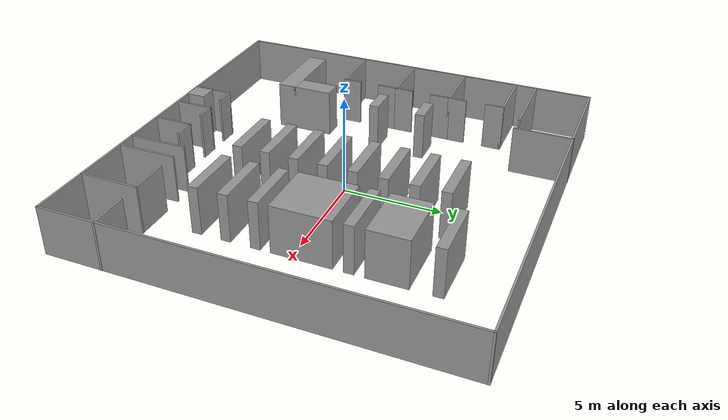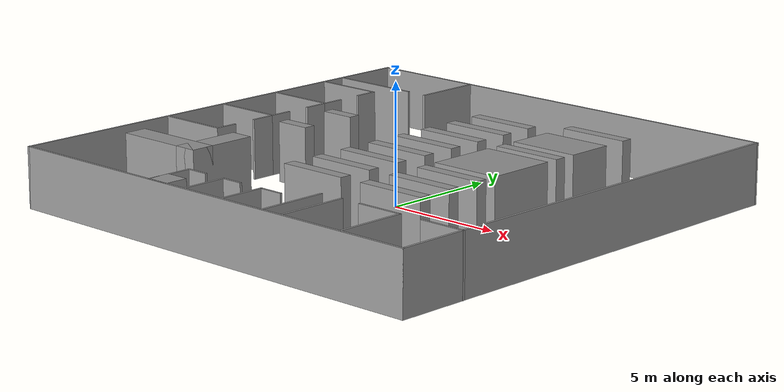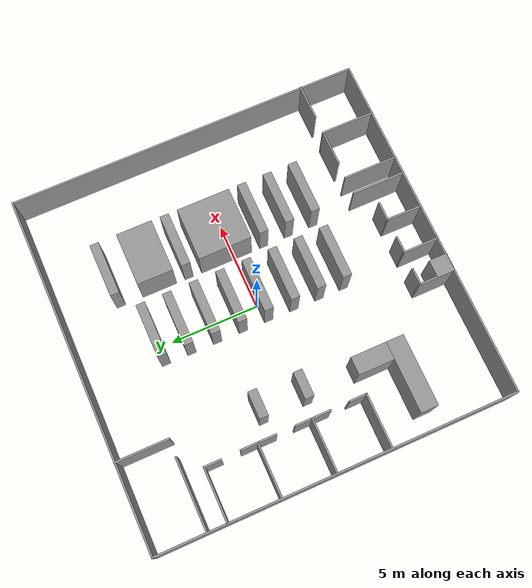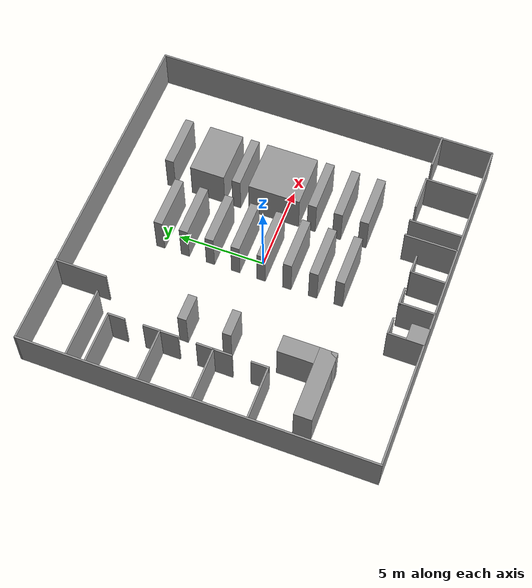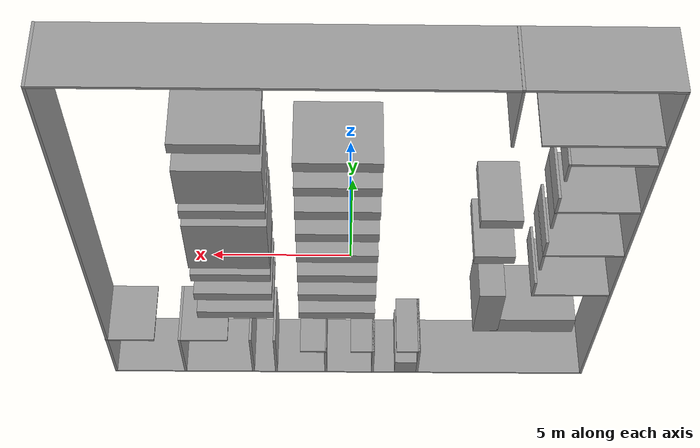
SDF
<?xml version='1.0'?>
<sdf version='1.6'>
  <model name='bibeg'>
    <pose frame=''>-0.041 -0.032 0 0 -0 0</pose>
    <link name='Wall_1'>
      <collision name='Wall_1_Collision'>
        <geometry>
          <box>
            <size>20 0.1 2.5</size>
          </box>
        </geometry>
        <pose frame=''>0 0 1.25 0 -0 0</pose>
      </collision>
      <visual name='Wall_1_Visual'>
        <pose frame=''>0 0 1.25 0 -0 0</pose>
        <geometry>
          <box>
            <size>20 0.1 2.5</size>
          </box>
        </geometry>
        <material>
          <script>
            <uri>file://media/materials/scripts/gazebo.material</uri>
            <name>Gazebo/Grey</name>
          </script>
          <ambient>1 1 1 1</ambient>
        </material>
        <meta>
          <layer>0</layer>
        </meta>
      </visual>
      <pose frame=''>-0.009 -9.957 0 0 -0 0</pose>
    </link>
    <link name='Wall_11'>
      <collision name='Wall_11_Collision'>
        <geometry>
          <box>
            <size>2 0.1 2.5</size>
          </box>
        </geometry>
        <pose frame=''>0 0 1.25 0 -0 0</pose>
      </collision>
      <visual name='Wall_11_Visual'>
        <pose frame=''>0 0 1.25 0 -0 0</pose>
        <geometry>
          <box>
            <size>2 0.1 2.5</size>
          </box>
        </geometry>
        <material>
          <script>
            <uri>file://media/materials/scripts/gazebo.material</uri>
            <name>Gazebo/Grey</name>
          </script>
          <ambient>1 1 1 1</ambient>
        </material>
        <meta>
          <layer>0</layer>
        </meta>
      </visual>
      <pose frame=''>-1.003 -8.963 0 0 -0 1.5708</pose>
    </link>
    <link name='Wall_12'>
      <collision name='Wall_12_Collision'>
        <geometry>
          <box>
            <size>1 0.1 2.5</size>
          </box>
        </geometry>
        <pose frame=''>0 0 1.25 0 -0 0</pose>
      </collision>
      <visual name='Wall_12_Visual'>
        <pose frame=''>0 0 1.25 0 -0 0</pose>
        <geometry>
          <box>
            <size>1 0.1 2.5</size>
          </box>
        </geometry>
        <material>
          <script>
            <uri>file://media/materials/scripts/gazebo.material</uri>
            <name>Gazebo/Grey</name>
          </script>
          <ambient>1 1 1 1</ambient>
        </material>
        <meta>
          <layer>0</layer>
        </meta>
      </visual>
      <pose frame=''>-0.553 -8.013 0 0 -0 0</pose>
    </link>
    <link name='Wall_14'>
      <collision name='Wall_14_Collision'>
        <geometry>
          <box>
            <size>1.95 0.1 2.5</size>
          </box>
        </geometry>
        <pose frame=''>0 0 1.25 0 -0 0</pose>
      </collision>
      <visual name='Wall_14_Visual'>
        <pose frame=''>0 0 1.25 0 -0 0</pose>
        <geometry>
          <box>
            <size>1.95 0.1 2.5</size>
          </box>
        </geometry>
        <material>
          <script>
            <uri>file://media/materials/scripts/gazebo.material</uri>
            <name>Gazebo/Grey</name>
          </script>
          <ambient>1 1 1 1</ambient>
        </material>
        <meta>
          <layer>0</layer>
        </meta>
      </visual>
      <pose frame=''>0.998 -8.928 0 0 -0 1.55999</pose>
    </link>
    <link name='Wall_15'>
      <collision name='Wall_15_Collision'>
        <geometry>
          <box>
            <size>1.1 0.1 2.5</size>
          </box>
        </geometry>
        <pose frame=''>0 0 1.25 0 -0 0</pose>
      </collision>
      <visual name='Wall_15_Visual'>
        <pose frame=''>0 0 1.25 0 -0 0</pose>
        <geometry>
          <box>
            <size>1.1 0.1 2.5</size>
          </box>
        </geometry>
        <material>
          <script>
            <uri>file://media/materials/scripts/gazebo.material</uri>
            <name>Gazebo/Grey</name>
          </script>
          <ambient>1 1 1 1</ambient>
        </material>
        <meta>
          <layer>0</layer>
        </meta>
      </visual>
      <pose frame=''>1.508 -8.003 0 0 -0 0</pose>
    </link>
    <link name='Wall_17'>
      <collision name='Wall_17_Collision'>
        <geometry>
          <box>
            <size>3 0.1 2.5</size>
          </box>
        </geometry>
        <pose frame=''>0 0 1.25 0 -0 0</pose>
      </collision>
      <visual name='Wall_17_Visual'>
        <pose frame=''>0 0 1.25 0 -0 0</pose>
        <geometry>
          <box>
            <size>3 0.1 2.5</size>
          </box>
        </geometry>
        <material>
          <script>
            <uri>file://media/materials/scripts/gazebo.material</uri>
            <name>Gazebo/Grey</name>
          </script>
          <ambient>1 1 1 1</ambient>
        </material>
        <meta>
          <layer>0</layer>
        </meta>
      </visual>
      <pose frame=''>3.1 -8.48345 0 0 -0 1.5708</pose>
    </link>
    <link name='Wall_2'>
      <collision name='Wall_2_Collision'>
        <geometry>
          <box>
            <size>20 0.1 2.5</size>
          </box>
        </geometry>
        <pose frame=''>0 0 1.25 0 -0 0</pose>
      </collision>
      <visual name='Wall_2_Visual'>
        <pose frame=''>0 0 1.25 0 -0 0</pose>
        <geometry>
          <box>
            <size>20 0.1 2.5</size>
          </box>
        </geometry>
        <material>
          <script>
            <uri>file://media/materials/scripts/gazebo.material</uri>
            <name>Gazebo/Grey</name>
          </script>
          <ambient>1 1 1 1</ambient>
        </material>
        <meta>
          <layer>0</layer>
        </meta>
      </visual>
      <pose frame=''>9.941 -0.007 0 0 -0 1.5708</pose>
    </link>
    <link name='Wall_20'>
      <collision name='Wall_20_Collision'>
        <geometry>
          <box>
            <size>3 0.1 2.5</size>
          </box>
        </geometry>
        <pose frame=''>0 0 1.25 0 -0 0</pose>
      </collision>
      <visual name='Wall_20_Visual'>
        <pose frame=''>0 0 1.25 0 -0 0</pose>
        <geometry>
          <box>
            <size>3 0.1 2.5</size>
          </box>
        </geometry>
        <material>
          <script>
            <uri>file://media/materials/scripts/gazebo.material</uri>
            <name>Gazebo/Grey</name>
          </script>
          <ambient>1 1 1 1</ambient>
        </material>
        <meta>
          <layer>0</layer>
        </meta>
      </visual>
      <pose frame=''>4.085 -8.443 0 0 -0 1.5708</pose>
    </link>
    <link name='Wall_23'>
      <collision name='Wall_23_Collision'>
        <geometry>
          <box>
            <size>3 0.1 2.5</size>
          </box>
        </geometry>
        <pose frame=''>0 0 1.25 0 -0 0</pose>
      </collision>
      <visual name='Wall_23_Visual'>
        <pose frame=''>0 0 1.25 0 -0 0</pose>
        <geometry>
          <box>
            <size>3 0.1 2.5</size>
          </box>
        </geometry>
        <material>
          <script>
            <uri>file://media/materials/scripts/gazebo.material</uri>
            <name>Gazebo/Grey</name>
          </script>
          <ambient>1 1 1 1</ambient>
        </material>
        <meta>
          <layer>0</layer>
        </meta>
      </visual>
      <pose frame=''>6.98189 -8.46334 0 0 -0 1.5708</pose>
    </link>
    <link name='Wall_24'>
      <collision name='Wall_24_Collision'>
        <geometry>
          <box>
            <size>2 0.1 2.5</size>
          </box>
        </geometry>
        <pose frame=''>0 0 1.25 0 -0 0</pose>
      </collision>
      <visual name='Wall_24_Visual'>
        <pose frame=''>0 0 1.25 0 -0 0</pose>
        <geometry>
          <box>
            <size>2 0.1 2.5</size>
          </box>
        </geometry>
        <material>
          <script>
            <uri>file://media/materials/scripts/gazebo.material</uri>
            <name>Gazebo/Grey</name>
          </script>
          <ambient>1 1 1 1</ambient>
        </material>
        <meta>
          <layer>0</layer>
        </meta>
      </visual>
      <pose frame=''>6.01177 -7.01334 0 0 -0 3.14159</pose>
    </link>
    <link name='Wall_26'>
      <collision name='Wall_26_Collision'>
        <geometry>
          <box>
            <size>2 0.1 2.5</size>
          </box>
        </geometry>
        <pose frame=''>0 0 1.25 0 -0 0</pose>
      </collision>
      <visual name='Wall_26_Visual'>
        <pose frame=''>0 0 1.25 0 -0 0</pose>
        <geometry>
          <box>
            <size>2 0.1 2.5</size>
          </box>
        </geometry>
        <material>
          <script>
            <uri>file://media/materials/scripts/gazebo.material</uri>
            <name>Gazebo/Grey</name>
          </script>
          <ambient>1 1 1 1</ambient>
        </material>
        <meta>
          <layer>0</layer>
        </meta>
      </visual>
      <pose frame=''>9.009 -7.017 0 0 -0 3.14159</pose>
    </link>
    <link name='Wall_28'>
      <collision name='Wall_28_Collision'>
        <geometry>
          <box>
            <size>3 0.1 2.5</size>
          </box>
        </geometry>
        <pose frame=''>0 0 1.25 0 -0 0</pose>
      </collision>
      <visual name='Wall_28_Visual'>
        <pose frame=''>0 0 1.25 0 -0 0</pose>
        <geometry>
          <box>
            <size>3 0.1 2.5</size>
          </box>
        </geometry>
        <material>
          <script>
            <uri>file://media/materials/scripts/gazebo.material</uri>
            <name>Gazebo/Grey</name>
          </script>
          <ambient>1 1 1 1</ambient>
        </material>
        <meta>
          <layer>0</layer>
        </meta>
      </visual>
      <pose frame=''>-5.017 8.507 0 0 -0 -1.5708</pose>
    </link>
    <link name='Wall_3'>
      <collision name='Wall_3_Collision'>
        <geometry>
          <box>
            <size>20 0.1 2.5</size>
          </box>
        </geometry>
        <pose frame=''>0 0 1.25 0 -0 0</pose>
      </collision>
      <visual name='Wall_3_Visual'>
        <pose frame=''>0 0 1.25 0 -0 0</pose>
        <geometry>
          <box>
            <size>20 0.1 2.5</size>
          </box>
        </geometry>
        <material>
          <script>
            <uri>file://media/materials/scripts/gazebo.material</uri>
            <name>Gazebo/Grey</name>
          </script>
          <ambient>1 1 1 1</ambient>
        </material>
        <meta>
          <layer>0</layer>
        </meta>
      </visual>
      <pose frame=''>-0.009 9.943 0 0 -0 3.14159</pose>
    </link>
    <link name='Wall_30'>
      <collision name='Wall_30_Collision'>
        <geometry>
          <box>
            <size>4 0.1 2.5</size>
          </box>
        </geometry>
        <pose frame=''>0 0 1.25 0 -0 0</pose>
      </collision>
      <visual name='Wall_30_Visual'>
        <pose frame=''>0 0 1.25 0 -0 0</pose>
        <geometry>
          <box>
            <size>4 0.1 2.5</size>
          </box>
        </geometry>
        <material>
          <script>
            <uri>file://media/materials/scripts/gazebo.material</uri>
            <name>Gazebo/Grey</name>
          </script>
          <ambient>1 1 1 1</ambient>
        </material>
        <meta>
          <layer>0</layer>
        </meta>
      </visual>
      <pose frame=''>-7.94645 7.08678 0 0 -0 0</pose>
    </link>
    <link name='Wall_33'>
      <collision name='Wall_33_Collision'>
        <geometry>
          <box>
            <size>3 0.1 2.5</size>
          </box>
        </geometry>
        <pose frame=''>0 0 1.25 0 -0 0</pose>
      </collision>
      <visual name='Wall_33_Visual'>
        <pose frame=''>0 0 1.25 0 -0 0</pose>
        <geometry>
          <box>
            <size>3 0.1 2.5</size>
          </box>
        </geometry>
        <material>
          <script>
            <uri>file://media/materials/scripts/gazebo.material</uri>
            <name>Gazebo/Grey</name>
          </script>
          <ambient>1 1 1 1</ambient>
        </material>
        <meta>
          <layer>0</layer>
        </meta>
      </visual>
      <pose frame=''>-8.46 6.002 0 0 -0 0</pose>
    </link>
    <link name='Wall_34'>
      <collision name='Wall_34_Collision'>
        <geometry>
          <box>
            <size>1 0.1 2.5</size>
          </box>
        </geometry>
        <pose frame=''>0 0 1.25 0 -0 0</pose>
      </collision>
      <visual name='Wall_34_Visual'>
        <pose frame=''>0 0 1.25 0 -0 0</pose>
        <geometry>
          <box>
            <size>1 0.1 2.5</size>
          </box>
        </geometry>
        <material>
          <script>
            <uri>file://media/materials/scripts/gazebo.material</uri>
            <name>Gazebo/Grey</name>
          </script>
          <ambient>1 1 1 1</ambient>
        </material>
        <meta>
          <layer>0</layer>
        </meta>
      </visual>
      <pose frame=''>-7.01 5.552 0 0 -0 -1.5708</pose>
    </link>
    <link name='Wall_36'>
      <collision name='Wall_36_Collision'>
        <geometry>
          <box>
            <size>3 0.1 2.5</size>
          </box>
        </geometry>
        <pose frame=''>0 0 1.25 0 -0 0</pose>
      </collision>
      <visual name='Wall_36_Visual'>
        <pose frame=''>0 0 1.25 0 -0 0</pose>
        <geometry>
          <box>
            <size>3 0.1 2.5</size>
          </box>
        </geometry>
        <material>
          <script>
            <uri>file://media/materials/scripts/gazebo.material</uri>
            <name>Gazebo/Grey</name>
          </script>
          <ambient>1 1 1 1</ambient>
        </material>
        <meta>
          <layer>0</layer>
        </meta>
      </visual>
      <pose frame=''>-8.433 3.093 0 0 -0 0</pose>
    </link>
    <link name='Wall_37'>
      <collision name='Wall_37_Collision'>
        <geometry>
          <box>
            <size>1 0.1 2.5</size>
          </box>
        </geometry>
        <pose frame=''>0 0 1.25 0 -0 0</pose>
      </collision>
      <visual name='Wall_37_Visual'>
        <pose frame=''>0 0 1.25 0 -0 0</pose>
        <geometry>
          <box>
            <size>1 0.1 2.5</size>
          </box>
        </geometry>
        <material>
          <script>
            <uri>file://media/materials/scripts/gazebo.material</uri>
            <name>Gazebo/Grey</name>
          </script>
          <ambient>1 1 1 1</ambient>
        </material>
        <meta>
          <layer>0</layer>
        </meta>
      </visual>
      <pose frame=''>-6.983 3.543 0 0 -0 1.5708</pose>
    </link>
    <link name='Wall_4'>
      <collision name='Wall_4_Collision'>
        <geometry>
          <box>
            <size>20 0.1 2.5</size>
          </box>
        </geometry>
        <pose frame=''>0 0 1.25 0 -0 0</pose>
      </collision>
      <visual name='Wall_4_Visual'>
        <pose frame=''>0 0 1.25 0 -0 0</pose>
        <geometry>
          <box>
            <size>20 0.1 2.5</size>
          </box>
        </geometry>
        <material>
          <script>
            <uri>file://media/materials/scripts/gazebo.material</uri>
            <name>Gazebo/Grey</name>
          </script>
          <ambient>1 1 1 1</ambient>
        </material>
        <meta>
          <layer>0</layer>
        </meta>
      </visual>
      <pose frame=''>-9.959 -0.007 0 0 -0 -1.5708</pose>
    </link>
    <link name='Wall_40'>
      <collision name='Wall_40_Collision'>
        <geometry>
          <box>
            <size>1.1 0.1 2.5</size>
          </box>
        </geometry>
        <pose frame=''>0 0 1.25 0 -0 0</pose>
      </collision>
      <visual name='Wall_40_Visual'>
        <pose frame=''>0 0 1.25 0 -0 0</pose>
        <geometry>
          <box>
            <size>1.1 0.1 2.5</size>
          </box>
        </geometry>
        <material>
          <script>
            <uri>file://media/materials/scripts/gazebo.material</uri>
            <name>Gazebo/Grey</name>
          </script>
          <ambient>1 1 1 1</ambient>
        </material>
        <meta>
          <layer>0</layer>
        </meta>
      </visual>
      <pose frame=''>-6.983 2.593 0 0 -0 -1.5708</pose>
    </link>
    <link name='Wall_42'>
      <collision name='Wall_42_Collision'>
        <geometry>
          <box>
            <size>3 0.1 2.5</size>
          </box>
        </geometry>
        <pose frame=''>0 0 1.25 0 -0 0</pose>
      </collision>
      <visual name='Wall_42_Visual'>
        <pose frame=''>0 0 1.25 0 -0 0</pose>
        <geometry>
          <box>
            <size>3 0.1 2.5</size>
          </box>
        </geometry>
        <material>
          <script>
            <uri>file://media/materials/scripts/gazebo.material</uri>
            <name>Gazebo/Grey</name>
          </script>
          <ambient>1 1 1 1</ambient>
        </material>
        <meta>
          <layer>0</layer>
        </meta>
      </visual>
      <pose frame=''>-8.433 0.104 0 0 -0 0</pose>
    </link>
    <link name='Wall_43'>
      <collision name='Wall_43_Collision'>
        <geometry>
          <box>
            <size>1 0.1 2.5</size>
          </box>
        </geometry>
        <pose frame=''>0 0 1.25 0 -0 0</pose>
      </collision>
      <visual name='Wall_43_Visual'>
        <pose frame=''>0 0 1.25 0 -0 0</pose>
        <geometry>
          <box>
            <size>1 0.1 2.5</size>
          </box>
        </geometry>
        <material>
          <script>
            <uri>file://media/materials/scripts/gazebo.material</uri>
            <name>Gazebo/Grey</name>
          </script>
          <ambient>1 1 1 1</ambient>
        </material>
        <meta>
          <layer>0</layer>
        </meta>
      </visual>
      <pose frame=''>-6.983 0.554 0 0 -0 1.5708</pose>
    </link>
    <link name='Wall_45'>
      <collision name='Wall_45_Collision'>
        <geometry>
          <box>
            <size>1.1 0.1 2.5</size>
          </box>
        </geometry>
        <pose frame=''>0 0 1.25 0 -0 0</pose>
      </collision>
      <visual name='Wall_45_Visual'>
        <pose frame=''>0 0 1.25 0 -0 0</pose>
        <geometry>
          <box>
            <size>1.1 0.1 2.5</size>
          </box>
        </geometry>
        <material>
          <script>
            <uri>file://media/materials/scripts/gazebo.material</uri>
            <name>Gazebo/Grey</name>
          </script>
          <ambient>1 1 1 1</ambient>
        </material>
        <meta>
          <layer>0</layer>
        </meta>
      </visual>
      <pose frame=''>-6.983 -0.396 0 0 -0 -1.5708</pose>
    </link>
    <link name='Wall_47'>
      <collision name='Wall_47_Collision'>
        <geometry>
          <box>
            <size>3 0.1 2.5</size>
          </box>
        </geometry>
        <pose frame=''>0 0 1.25 0 -0 0</pose>
      </collision>
      <visual name='Wall_47_Visual'>
        <pose frame=''>0 0 1.25 0 -0 0</pose>
        <geometry>
          <box>
            <size>3 0.1 2.5</size>
          </box>
        </geometry>
        <material>
          <script>
            <uri>file://media/materials/scripts/gazebo.material</uri>
            <name>Gazebo/Grey</name>
          </script>
          <ambient>1 1 1 1</ambient>
        </material>
        <meta>
          <layer>0</layer>
        </meta>
      </visual>
      <pose frame=''>-8.42 -2.911 0 0 -0 0</pose>
    </link>
    <link name='Wall_48'>
      <collision name='Wall_48_Collision'>
        <geometry>
          <box>
            <size>1 0.1 2.5</size>
          </box>
        </geometry>
        <pose frame=''>0 0 1.25 0 -0 0</pose>
      </collision>
      <visual name='Wall_48_Visual'>
        <pose frame=''>0 0 1.25 0 -0 0</pose>
        <geometry>
          <box>
            <size>1 0.1 2.5</size>
          </box>
        </geometry>
        <material>
          <script>
            <uri>file://media/materials/scripts/gazebo.material</uri>
            <name>Gazebo/Grey</name>
          </script>
          <ambient>1 1 1 1</ambient>
        </material>
        <meta>
          <layer>0</layer>
        </meta>
      </visual>
      <pose frame=''>-6.97 -2.461 0 0 -0 1.5708</pose>
    </link>
    <link name='Wall_50'>
      <collision name='Wall_50_Collision'>
        <geometry>
          <box>
            <size>4 1 2.5</size>
          </box>
        </geometry>
        <pose frame=''>0 0 1.25 0 -0 0</pose>
      </collision>
      <visual name='Wall_50_Visual'>
        <pose frame=''>0 0 1.25 0 -0 0</pose>
        <geometry>
          <box>
            <size>4 1 2.5</size>
          </box>
        </geometry>
        <material>
          <script>
            <uri>file://media/materials/scripts/gazebo.material</uri>
            <name>Gazebo/Grey</name>
          </script>
          <ambient>1 1 1 1</ambient>
        </material>
        <meta>
          <layer>0</layer>
        </meta>
      </visual>
      <pose frame=''>-6.94939 -5.487 0 0 -0 0</pose>
    </link>
    <link name='Wall_51'>
      <collision name='Wall_51_Collision'>
        <geometry>
          <box>
            <size>3 1 2.5</size>
          </box>
        </geometry>
        <pose frame=''>0 0 1.25 0 -0 0</pose>
      </collision>
      <visual name='Wall_51_Visual'>
        <pose frame=''>0 0 1.25 0 -0 0</pose>
        <geometry>
          <box>
            <size>3 1 2.5</size>
          </box>
        </geometry>
        <material>
          <script>
            <uri>file://media/materials/scripts/gazebo.material</uri>
            <name>Gazebo/Grey</name>
          </script>
          <ambient>1 1 1 1</ambient>
        </material>
        <meta>
          <layer>0</layer>
        </meta>
      </visual>
      <pose frame=''>-5.44939 -4.487 0 0 -0 1.5708</pose>
    </link>
    <link name='Wall_53'>
      <collision name='Wall_53_Collision'>
        <geometry>
          <box>
            <size>1.5 0.5 2.5</size>
          </box>
        </geometry>
        <pose frame=''>0 0 1.25 0 -0 0</pose>
      </collision>
      <visual name='Wall_53_Visual'>
        <pose frame=''>0 0 1.25 0 -0 0</pose>
        <geometry>
          <box>
            <size>1.5 0.5 2.5</size>
          </box>
        </geometry>
        <material>
          <script>
            <uri>file://media/materials/scripts/gazebo.material</uri>
            <name>Gazebo/Grey</name>
          </script>
          <ambient>1 1 1 1</ambient>
        </material>
        <meta>
          <layer>0</layer>
        </meta>
      </visual>
      <pose frame=''>-5.22251 -0.227 0 0 -0 0</pose>
    </link>
    <link name='Wall_55'>
      <collision name='Wall_55_Collision'>
        <geometry>
          <box>
            <size>1.5 0.5 2.5</size>
          </box>
        </geometry>
        <pose frame=''>0 0 1.25 0 -0 0</pose>
      </collision>
      <visual name='Wall_55_Visual'>
        <pose frame=''>0 0 1.25 0 -0 0</pose>
        <geometry>
          <box>
            <size>1.5 0.5 2.5</size>
          </box>
        </geometry>
        <material>
          <script>
            <uri>file://media/materials/scripts/gazebo.material</uri>
            <name>Gazebo/Grey</name>
          </script>
          <ambient>1 1 1 1</ambient>
        </material>
        <meta>
          <layer>0</layer>
        </meta>
      </visual>
      <pose frame=''>-5.20702 2.28602 0 0 -0 0</pose>
    </link>
    <link name='Wall_57'>
      <collision name='Wall_57_Collision'>
        <geometry>
          <box>
            <size>3 0.5 2.5</size>
          </box>
        </geometry>
        <pose frame=''>0 0 1.25 0 -0 0</pose>
      </collision>
      <visual name='Wall_57_Visual'>
        <pose frame=''>0 0 1.25 0 -0 0</pose>
        <geometry>
          <box>
            <size>3 0.5 2.5</size>
          </box>
        </geometry>
        <material>
          <script>
            <uri>file://media/materials/scripts/gazebo.material</uri>
            <name>Gazebo/Grey</name>
          </script>
          <ambient>1 1 1 1</ambient>
        </material>
        <meta>
          <layer>0</layer>
        </meta>
      </visual>
      <pose frame=''>0.538131 5.76561 0 0 -0 0</pose>
    </link>
    <link name='Wall_59'>
      <collision name='Wall_59_Collision'>
        <geometry>
          <box>
            <size>3 0.5 2.5</size>
          </box>
        </geometry>
        <pose frame=''>0 0 1.25 0 -0 0</pose>
      </collision>
      <visual name='Wall_59_Visual'>
        <pose frame=''>0 0 1.25 0 -0 0</pose>
        <geometry>
          <box>
            <size>3 0.5 2.5</size>
          </box>
        </geometry>
        <material>
          <script>
            <uri>file://media/materials/scripts/gazebo.material</uri>
            <name>Gazebo/Grey</name>
          </script>
          <ambient>1 1 1 1</ambient>
        </material>
        <meta>
          <layer>0</layer>
        </meta>
      </visual>
      <pose frame=''>0.537392 4.28587 0 0 -0 0</pose>
    </link>
    <link name='Wall_61'>
      <collision name='Wall_61_Collision'>
        <geometry>
          <box>
            <size>3 0.5 2.5</size>
          </box>
        </geometry>
        <pose frame=''>0 0 1.25 0 -0 0</pose>
      </collision>
      <visual name='Wall_61_Visual'>
        <pose frame=''>0 0 1.25 0 -0 0</pose>
        <geometry>
          <box>
            <size>3 0.5 2.5</size>
          </box>
        </geometry>
        <material>
          <script>
            <uri>file://media/materials/scripts/gazebo.material</uri>
            <name>Gazebo/Grey</name>
          </script>
          <ambient>1 1 1 1</ambient>
        </material>
        <meta>
          <layer>0</layer>
        </meta>
      </visual>
      <pose frame=''>0.537915 2.78187 0 0 -0 0</pose>
    </link>
    <link name='Wall_63'>
      <collision name='Wall_63_Collision'>
        <geometry>
          <box>
            <size>3 0.5 2.5</size>
          </box>
        </geometry>
        <pose frame=''>0 0 1.25 0 -0 0</pose>
      </collision>
      <visual name='Wall_63_Visual'>
        <pose frame=''>0 0 1.25 0 -0 0</pose>
        <geometry>
          <box>
            <size>3 0.5 2.5</size>
          </box>
        </geometry>
        <material>
          <script>
            <uri>file://media/materials/scripts/gazebo.material</uri>
            <name>Gazebo/Grey</name>
          </script>
          <ambient>1 1 1 1</ambient>
        </material>
        <meta>
          <layer>0</layer>
        </meta>
      </visual>
      <pose frame=''>0.538131 1.27887 0 0 -0 0</pose>
    </link>
    <link name='Wall_65'>
      <collision name='Wall_65_Collision'>
        <geometry>
          <box>
            <size>3 0.5 2.5</size>
          </box>
        </geometry>
        <pose frame=''>0 0 1.25 0 -0 0</pose>
      </collision>
      <visual name='Wall_65_Visual'>
        <pose frame=''>0 0 1.25 0 -0 0</pose>
        <geometry>
          <box>
            <size>3 0.5 2.5</size>
          </box>
        </geometry>
        <material>
          <script>
            <uri>file://media/materials/scripts/gazebo.material</uri>
            <name>Gazebo/Grey</name>
          </script>
          <ambient>1 1 1 1</ambient>
        </material>
        <meta>
          <layer>0</layer>
        </meta>
      </visual>
      <pose frame=''>0.537392 -0.225261 0 0 -0 0</pose>
    </link>
    <link name='Wall_67'>
      <collision name='Wall_67_Collision'>
        <geometry>
          <box>
            <size>3 0.5 2.5</size>
          </box>
        </geometry>
        <pose frame=''>0 0 1.25 0 -0 0</pose>
      </collision>
      <visual name='Wall_67_Visual'>
        <pose frame=''>0 0 1.25 0 -0 0</pose>
        <geometry>
          <box>
            <size>3 0.5 2.5</size>
          </box>
        </geometry>
        <material>
          <script>
            <uri>file://media/materials/scripts/gazebo.material</uri>
            <name>Gazebo/Grey</name>
          </script>
          <ambient>1 1 1 1</ambient>
        </material>
        <meta>
          <layer>0</layer>
        </meta>
      </visual>
      <pose frame=''>0.537392 -1.72813 0 0 -0 0</pose>
    </link>
    <link name='Wall_69'>
      <collision name='Wall_69_Collision'>
        <geometry>
          <box>
            <size>3 0.5 2.5</size>
          </box>
        </geometry>
        <pose frame=''>0 0 1.25 0 -0 0</pose>
      </collision>
      <visual name='Wall_69_Visual'>
        <pose frame=''>0 0 1.25 0 -0 0</pose>
        <geometry>
          <box>
            <size>3 0.5 2.5</size>
          </box>
        </geometry>
        <material>
          <script>
            <uri>file://media/materials/scripts/gazebo.material</uri>
            <name>Gazebo/Grey</name>
          </script>
          <ambient>1 1 1 1</ambient>
        </material>
        <meta>
          <layer>0</layer>
        </meta>
      </visual>
      <pose frame=''>0.536217 -3.23139 0 0 -0 3.14159</pose>
    </link>
    <link name='Wall_7'>
      <collision name='Wall_7_Collision'>
        <geometry>
          <box>
            <size>2 0.1 2.5</size>
          </box>
        </geometry>
        <pose frame=''>0 0 1.25 0 -0 0</pose>
      </collision>
      <visual name='Wall_7_Visual'>
        <pose frame=''>0 0 1.25 0 -0 0</pose>
        <geometry>
          <box>
            <size>2 0.1 2.5</size>
          </box>
        </geometry>
        <material>
          <script>
            <uri>file://media/materials/scripts/gazebo.material</uri>
            <name>Gazebo/Grey</name>
          </script>
          <ambient>1 1 1 1</ambient>
        </material>
        <meta>
          <layer>0</layer>
        </meta>
      </visual>
      <pose frame=''>-2.914 -8.943 0 0 -0 1.5708</pose>
    </link>
    <link name='Wall_71'>
      <collision name='Wall_71_Collision'>
        <geometry>
          <box>
            <size>3 0.5 2.5</size>
          </box>
        </geometry>
        <pose frame=''>0 0 1.25 0 -0 0</pose>
      </collision>
      <visual name='Wall_71_Visual'>
        <pose frame=''>0 0 1.25 0 -0 0</pose>
        <geometry>
          <box>
            <size>3 0.5 2.5</size>
          </box>
        </geometry>
        <material>
          <script>
            <uri>file://media/materials/scripts/gazebo.material</uri>
            <name>Gazebo/Grey</name>
          </script>
          <ambient>1 1 1 1</ambient>
        </material>
        <meta>
          <layer>0</layer>
        </meta>
      </visual>
      <pose frame=''>0.537262 -4.712 0 0 -0 0</pose>
    </link>
    <link name='Wall_73'>
      <collision name='Wall_73_Collision'>
        <geometry>
          <box>
            <size>3 0.5 2.5</size>
          </box>
        </geometry>
        <pose frame=''>0 0 1.25 0 -0 0</pose>
      </collision>
      <visual name='Wall_73_Visual'>
        <pose frame=''>0 0 1.25 0 -0 0</pose>
        <geometry>
          <box>
            <size>3 0.5 2.5</size>
          </box>
        </geometry>
        <material>
          <script>
            <uri>file://media/materials/scripts/gazebo.material</uri>
            <name>Gazebo/Grey</name>
          </script>
          <ambient>1 1 1 1</ambient>
        </material>
        <meta>
          <layer>0</layer>
        </meta>
      </visual>
      <pose frame=''>4.53978 -4.71213 0 0 -0 0</pose>
    </link>
    <link name='Wall_75'>
      <collision name='Wall_75_Collision'>
        <geometry>
          <box>
            <size>3 0.5 2.5</size>
          </box>
        </geometry>
        <pose frame=''>0 0 1.25 0 -0 0</pose>
      </collision>
      <visual name='Wall_75_Visual'>
        <pose frame=''>0 0 1.25 0 -0 0</pose>
        <geometry>
          <box>
            <size>3 0.5 2.5</size>
          </box>
        </geometry>
        <material>
          <script>
            <uri>file://media/materials/scripts/gazebo.material</uri>
            <name>Gazebo/Grey</name>
          </script>
          <ambient>1 1 1 1</ambient>
        </material>
        <meta>
          <layer>0</layer>
        </meta>
      </visual>
      <pose frame=''>4.53918 -3.20913 0 0 -0 0</pose>
    </link>
    <link name='Wall_77'>
      <collision name='Wall_77_Collision'>
        <geometry>
          <box>
            <size>3 0.5 2.5</size>
          </box>
        </geometry>
        <pose frame=''>0 0 1.25 0 -0 0</pose>
      </collision>
      <visual name='Wall_77_Visual'>
        <pose frame=''>0 0 1.25 0 -0 0</pose>
        <geometry>
          <box>
            <size>3 0.5 2.5</size>
          </box>
        </geometry>
        <material>
          <script>
            <uri>file://media/materials/scripts/gazebo.material</uri>
            <name>Gazebo/Grey</name>
          </script>
          <ambient>1 1 1 1</ambient>
        </material>
        <meta>
          <layer>0</layer>
        </meta>
      </visual>
      <pose frame=''>4.53965 -1.705 0 0 -0 0</pose>
    </link>
    <link name='Wall_79'>
      <collision name='Wall_79_Collision'>
        <geometry>
          <box>
            <size>3.01 3 2.5</size>
          </box>
        </geometry>
        <pose frame=''>0 0 1.25 0 -0 0</pose>
      </collision>
      <visual name='Wall_79_Visual'>
        <pose frame=''>0 0 1.25 0 -0 0</pose>
        <geometry>
          <box>
            <size>3.01 3 2.5</size>
          </box>
        </geometry>
        <material>
          <script>
            <uri>file://media/materials/scripts/gazebo.material</uri>
            <name>Gazebo/Grey</name>
          </script>
          <ambient>1 1 1 1</ambient>
        </material>
        <meta>
          <layer>0</layer>
        </meta>
      </visual>
      <pose frame=''>4.533 0.538 0 0 -0 3.14159</pose>
    </link>
    <link name='Wall_8'>
      <collision name='Wall_8_Collision'>
        <geometry>
          <box>
            <size>1 0.1 2.5</size>
          </box>
        </geometry>
        <pose frame=''>0 0 1.25 0 -0 0</pose>
      </collision>
      <visual name='Wall_8_Visual'>
        <pose frame=''>0 0 1.25 0 -0 0</pose>
        <geometry>
          <box>
            <size>1 0.1 2.5</size>
          </box>
        </geometry>
        <material>
          <script>
            <uri>file://media/materials/scripts/gazebo.material</uri>
            <name>Gazebo/Grey</name>
          </script>
          <ambient>1 1 1 1</ambient>
        </material>
        <meta>
          <layer>0</layer>
        </meta>
      </visual>
      <pose frame=''>-2.464 -7.993 0 0 -0 0</pose>
    </link>
    <link name='Wall_81'>
      <collision name='Wall_81_Collision'>
        <geometry>
          <box>
            <size>3 0.5 2.5</size>
          </box>
        </geometry>
        <pose frame=''>0 0 1.25 0 -0 0</pose>
      </collision>
      <visual name='Wall_81_Visual'>
        <pose frame=''>0 0 1.25 0 -0 0</pose>
        <geometry>
          <box>
            <size>3 0.5 2.5</size>
          </box>
        </geometry>
        <material>
          <script>
            <uri>file://media/materials/scripts/gazebo.material</uri>
            <name>Gazebo/Grey</name>
          </script>
          <ambient>1 1 1 1</ambient>
        </material>
        <meta>
          <layer>0</layer>
        </meta>
      </visual>
      <pose frame=''>4.53892 2.78174 0 0 -0 0</pose>
    </link>
    <link name='Wall_83'>
      <collision name='Wall_83_Collision'>
        <geometry>
          <box>
            <size>3 2 2.5</size>
          </box>
        </geometry>
        <pose frame=''>0 0 1.25 0 -0 0</pose>
      </collision>
      <visual name='Wall_83_Visual'>
        <pose frame=''>0 0 1.25 0 -0 0</pose>
        <geometry>
          <box>
            <size>3 2 2.5</size>
          </box>
        </geometry>
        <material>
          <script>
            <uri>file://media/materials/scripts/gazebo.material</uri>
            <name>Gazebo/Grey</name>
          </script>
          <ambient>1 1 1 1</ambient>
        </material>
        <meta>
          <layer>0</layer>
        </meta>
      </visual>
      <pose frame=''>4.54722 4.51705 0 0 -0 3.14159</pose>
    </link>
    <link name='Wall_85'>
      <collision name='Wall_85_Collision'>
        <geometry>
          <box>
            <size>3 0.5 2.5</size>
          </box>
        </geometry>
        <pose frame=''>0 0 1.25 0 -0 0</pose>
      </collision>
      <visual name='Wall_85_Visual'>
        <pose frame=''>0 0 1.25 0 -0 0</pose>
        <geometry>
          <box>
            <size>3 0.5 2.5</size>
          </box>
        </geometry>
        <material>
          <script>
            <uri>file://media/materials/scripts/gazebo.material</uri>
            <name>Gazebo/Grey</name>
          </script>
          <ambient>1 1 1 1</ambient>
        </material>
        <meta>
          <layer>0</layer>
        </meta>
      </visual>
      <pose frame=''>4.53939 6.78374 0 0 -0 0</pose>
    </link>
    <link name='Wall_89'>
      <collision name='Wall_89_Collision'>
        <geometry>
          <box>
            <size>1.01 1 2.5</size>
          </box>
        </geometry>
        <pose frame=''>0 0 1.25 0 -0 0</pose>
      </collision>
      <visual name='Wall_89_Visual'>
        <pose frame=''>0 0 1.25 0 -0 0</pose>
        <geometry>
          <box>
            <size>1.01 1 2.5</size>
          </box>
        </geometry>
        <material>
          <script>
            <uri>file://media/materials/scripts/gazebo.material</uri>
            <name>Gazebo/Grey</name>
          </script>
          <ambient>1 1 1 1</ambient>
        </material>
        <meta>
          <layer>0</layer>
        </meta>
      </visual>
      <pose frame=''>-2.45184 -9.47684 0 0 -0 3.14159</pose>
    </link>
    <static>1</static>
  </model>
</sdf>
